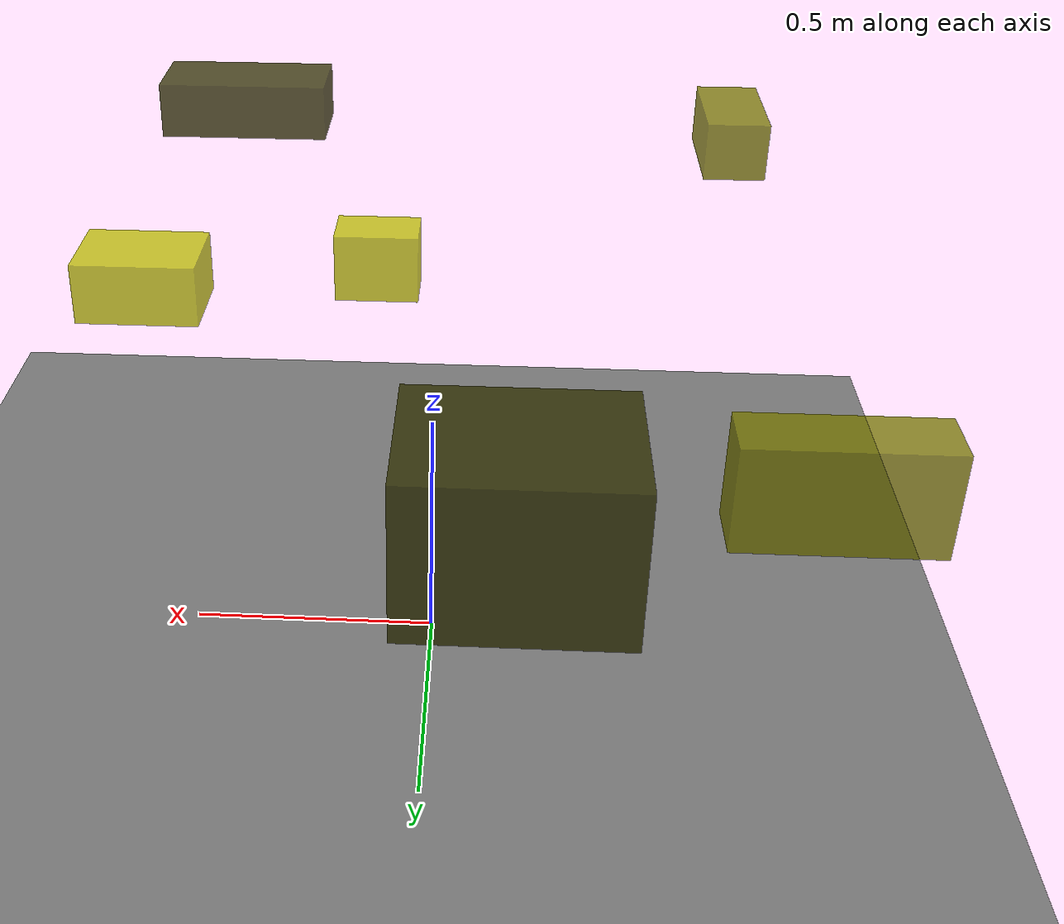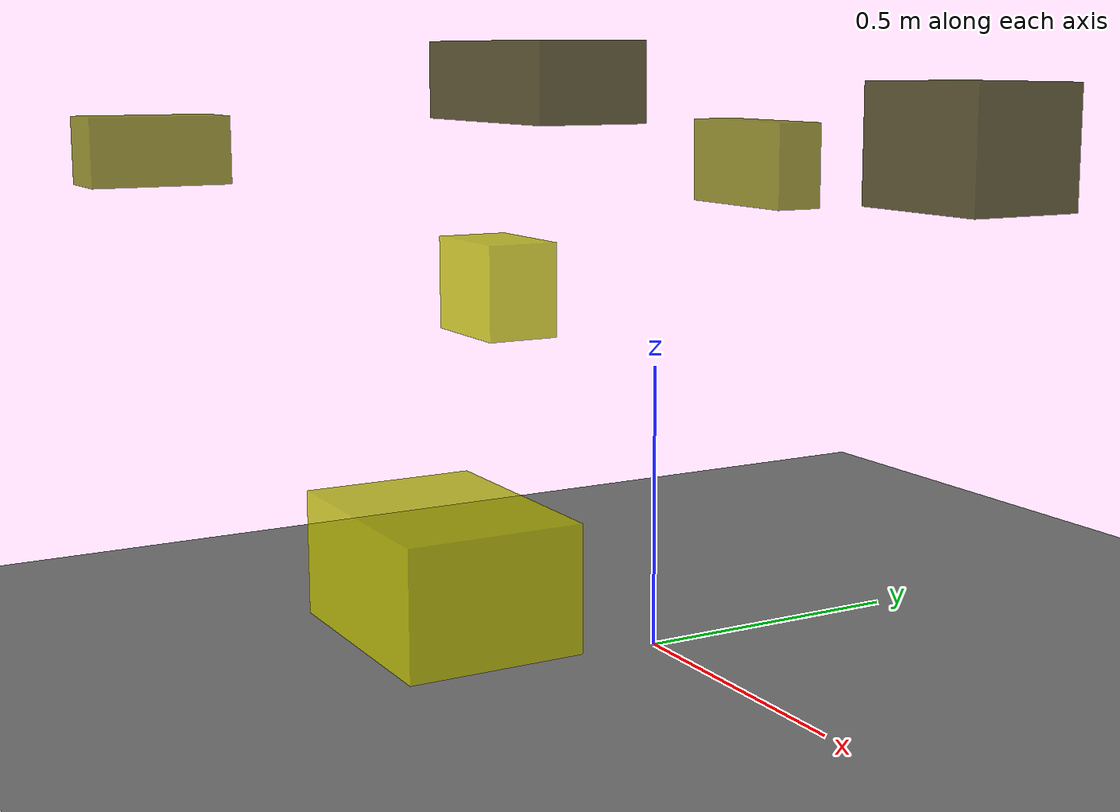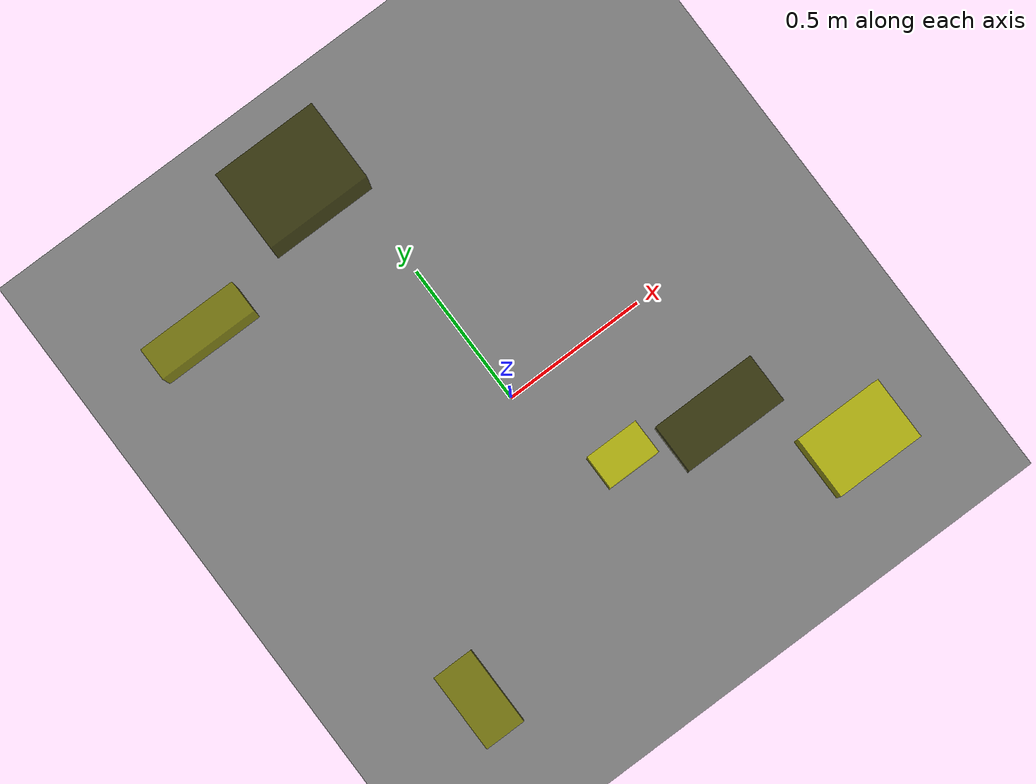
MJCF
<?xml version="1.0"?>
<mujoco model="obstacle_scene">
  <compiler angle="radian" coordinate="local"/>
  <option timestep="0.001" gravity="0 0 -9.81"/>

  <asset>
    <material name="obstacle_mat" rgba="0.8 0.8 0.0 0.8"/>
    <material name="ground_mat" rgba="0.5 0.5 0.5 1"/>
  </asset>

  <worldbody>
    <!-- Ground plane -->
    <geom name="ground" type="plane" size="3 3 0.1" material="ground_mat"/>

    <!-- Obstacles -->
    <body name="obstacle_0" pos="0.409612 -0.451407 0.996743">
      <geom name="obs_0" type="box" size="0.167104 0.078932 0.053939" rgba="0.2 0.2 0.0 0.8"/>
    </body>
    <body name="obstacle_1" pos="-0.635654 0.645147 0.800630">
      <geom name="obs_1" type="box" size="0.163855 0.053452 0.090770" rgba="0.5 0.5 0.0 0.8"/>
    </body>
    <body name="obstacle_2" pos="0.136692 -0.372952 0.679510">
      <geom name="obs_2" type="box" size="0.088088 0.056692 0.072655" rgba="0.8 0.8 0.0 0.8"/>
    </body>
    <body name="obstacle_3" pos="-0.153613 0.827957 0.852751">
      <geom name="obs_3" type="box" size="0.171581 0.132398 0.127488" rgba="0.2 0.2 0.0 0.8"/>
    </body>
    <body name="obstacle_4" pos="-0.621988 -0.688515 0.862217">
      <geom name="obs_4" type="box" size="0.065457 0.126631 0.061393" rgba="0.5 0.5 0.0 0.8"/>
    </body>
    <body name="obstacle_5" pos="0.746252 -0.755449 0.436030">
      <geom name="obs_5" type="box" size="0.150298 0.107139 0.076435" rgba="0.8 0.8 0.0 0.8"/>
    </body>
  </worldbody>
</mujoco>
